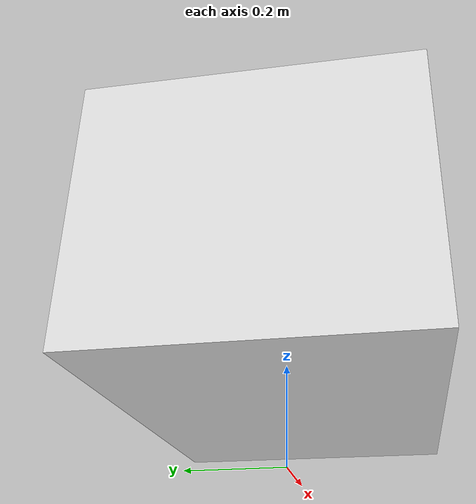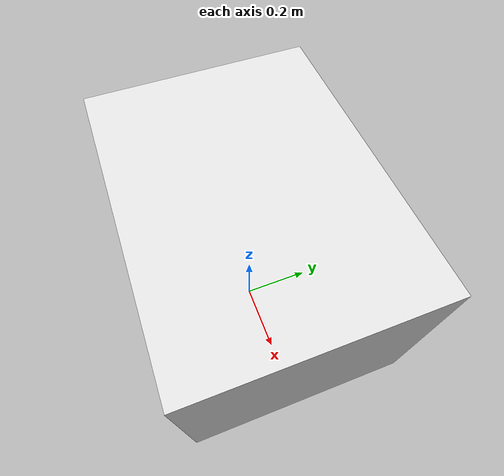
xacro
<?xml version="1.0"?>

<robot xmlns:xacro="http://www.ros.org/wiki/xacro" name="nomeer_robot">

    <xacro:include filename="material.xacro" ns="material" />
    <xacro:include filename="inertial_macros.xacro" ns="inertial" />

    <!-- base_link -->
    <link name="base_link">
        <visual name="base_link">
            <origin xyz="0.0 0.0 0.35" rpy="0.0 0.0 0.0" />
            <geometry>
                <box size="0.8 0.6 0.5" />
            </geometry>
            <xacro:material.white />
        </visual>

        <collision>
            <origin xyz="0.0 0.0 0.35" rpy="0.0 0.0 0.0" />
            <geometry>
                <box size="0.8 0.6 0.5" />
            </geometry>
        </collision>

        <xacro:inertial.inertial_box mass="10" x="0.8" y="0.6" z="0.5">
            <origin xyz="0.0 0.0 0.35" rpy="0.0 0.0 0.0" />
        </xacro:inertial.inertial_box>
    </link>

    <!-- Gazebo Material -->
    <gazebo reference="base_link">
        <material>Gazebo/White</material>
    </gazebo>

</robot>
